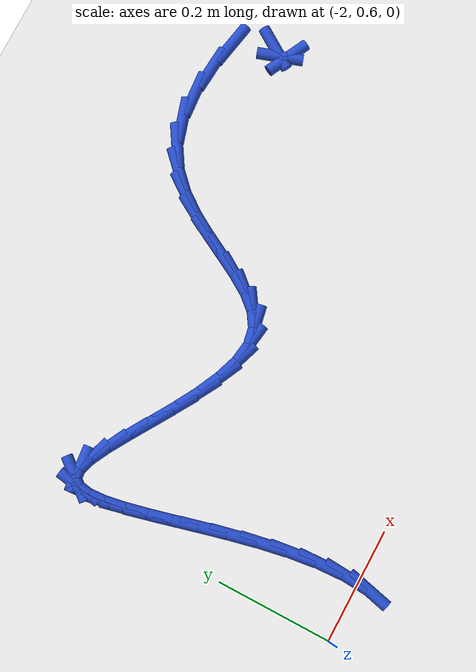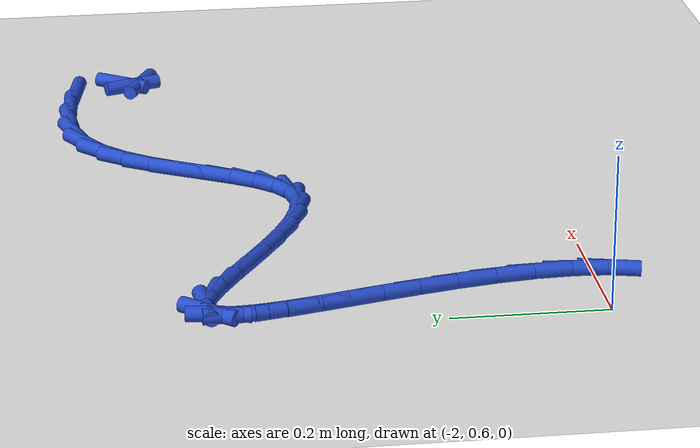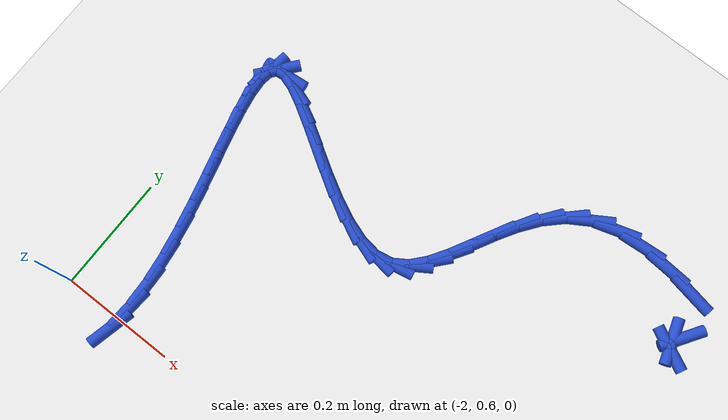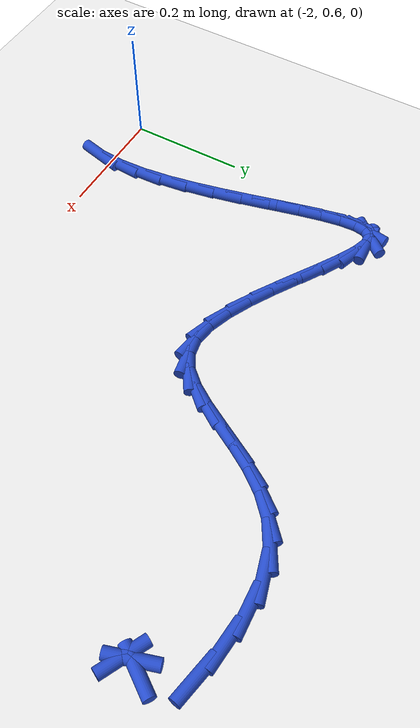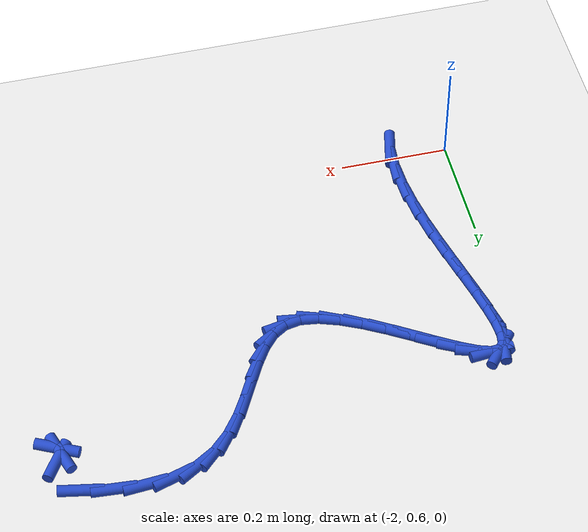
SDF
<sdf version="1.6">
 <world name="default">
  <model name="ground_plane">
   <static>1</static>
   <link name="link">
    <collision name="collision">
     <geometry><plane><normal>0 0 1</normal><size>100 100</size></plane></geometry>
     <surface><friction><ode><mu>100</mu><mu2>50</mu2></ode></friction></surface>
    </collision>
    <visual name="visual">
     <cast_shadows>0</cast_shadows>
     <geometry><plane><normal>0 0 1</normal><size>100 100</size></plane></geometry>
     <material>
      <script><uri>file://media/materials/scripts/gazebo.material</uri><name>Gazebo/WhiteGlow</name></script>
     </material>
    </visual>
   </link>
  </model>
  <model name="line">
   <link name="link_53">
    <pose>-1.161128758274284 1.1383847940797436 0.01 0 1.57 0.9865940551335252</pose>
    <collision name="collision">
     <geometry><cylinder><radius>0.01</radius><length>0.08</length></cylinder></geometry>
    </collision>
    <visual name="visual">
     <material>
      <script><name>Gazebo/Blue</name><uri>file://media/materials/scripts/gazebo.material</uri></script>
     </material>
     <geometry><cylinder><radius>0.01</radius><length>0.08</length></cylinder></geometry>
    </visual>
   </link>
   <link name="link_54">
    <pose>-1.1703131453018165 1.1244941255444962 0.01 0 1.57 -1.253305451888202</pose>
    <collision name="collision">
     <geometry><cylinder><radius>0.01</radius><length>0.08</length></cylinder></geometry>
    </collision>
    <visual name="visual">
     <material>
      <script><name>Gazebo/Blue</name><uri>file://media/materials/scripts/gazebo.material</uri></script>
     </material>
     <geometry><cylinder><radius>0.01</radius><length>0.08</length></cylinder></geometry>
    </visual>
   </link>
   <link name="link_55">
    <pose>-1.166426840530037 1.1126675231958216 0.01 0 1.57 -0.4606597184284638</pose>
    <collision name="collision">
     <geometry><cylinder><radius>0.01</radius><length>0.08</length></cylinder></geometry>
    </collision>
    <visual name="visual">
     <material>
      <script><name>Gazebo/Blue</name><uri>file://media/materials/scripts/gazebo.material</uri></script>
     </material>
     <geometry><cylinder><radius>0.01</radius><length>0.08</length></cylinder></geometry>
    </visual>
   </link>
   <link name="link_66">
    <pose>-1.1899140064845848 1.2073687295600792 0.01 0 1.57 -0.18602394724387952</pose>
    <collision name="collision">
     <geometry><cylinder><radius>0.01</radius><length>0.08</length></cylinder></geometry>
    </collision>
    <visual name="visual">
     <material>
      <script><name>Gazebo/Blue</name><uri>file://media/materials/scripts/gazebo.material</uri></script>
     </material>
     <geometry><cylinder><radius>0.01</radius><length>0.08</length></cylinder></geometry>
    </visual>
   </link>
   <link name="link_67">
    <pose>-1.244482178751375 1.2176384514821652 0.01 0 1.57 -0.07548754934938565</pose>
    <collision name="collision">
     <geometry><cylinder><radius>0.01</radius><length>0.08</length></cylinder></geometry>
    </collision>
    <visual name="visual">
     <material>
      <script><name>Gazebo/Blue</name><uri>file://media/materials/scripts/gazebo.material</uri></script>
     </material>
     <geometry><cylinder><radius>0.01</radius><length>0.08</length></cylinder></geometry>
    </visual>
   </link>
   <link name="link_68">
    <pose>-1.2981199509796055 1.221695143900685 0.01 0 1.57 0.07601645962911668</pose>
    <collision name="collision">
     <geometry><cylinder><radius>0.01</radius><length>0.08</length></cylinder></geometry>
    </collision>
    <visual name="visual">
     <material>
      <script><name>Gazebo/Blue</name><uri>file://media/materials/scripts/gazebo.material</uri></script>
     </material>
     <geometry><cylinder><radius>0.01</radius><length>0.08</length></cylinder></geometry>
    </visual>
   </link>
   <link name="link_69">
    <pose>-1.347815637745258 1.217910160412104 0.01 0 1.57 0.29694587534450034</pose>
    <collision name="collision">
     <geometry><cylinder><radius>0.01</radius><length>0.08</length></cylinder></geometry>
    </collision>
    <visual name="visual">
     <material>
      <script><name>Gazebo/Blue</name><uri>file://media/materials/scripts/gazebo.material</uri></script>
     </material>
     <geometry><cylinder><radius>0.01</radius><length>0.08</length></cylinder></geometry>
    </visual>
   </link>
   <link name="link_70">
    <pose>-1.3907080932190066 1.2047853681177356 0.01 0 1.57 0.5531061286805906</pose>
    <collision name="collision">
     <geometry><cylinder><radius>0.01</radius><length>0.08</length></cylinder></geometry>
    </collision>
    <visual name="visual">
     <material>
      <script><name>Gazebo/Blue</name><uri>file://media/materials/scripts/gazebo.material</uri></script>
     </material>
     <geometry><cylinder><radius>0.01</radius><length>0.08</length></cylinder></geometry>
    </visual>
   </link>
   <link name="link_71">
    <pose>-1.4262591598740235 1.1828365982569913 0.01 0 1.57 0.771271952233313</pose>
    <collision name="collision">
     <geometry><cylinder><radius>0.01</radius><length>0.08</length></cylinder></geometry>
    </collision>
    <visual name="visual">
     <material>
      <script><name>Gazebo/Blue</name><uri>file://media/materials/scripts/gazebo.material</uri></script>
     </material>
     <geometry><cylinder><radius>0.01</radius><length>0.08</length></cylinder></geometry>
    </visual>
   </link>
   <link name="link_72">
    <pose>-1.4557556623883396 1.1541618892243086 0.01 0 1.57 0.9305191412809647</pose>
    <collision name="collision">
     <geometry><cylinder><radius>0.01</radius><length>0.08</length></cylinder></geometry>
    </collision>
    <visual name="visual">
     <material>
      <script><name>Gazebo/Blue</name><uri>file://media/materials/scripts/gazebo.material</uri></script>
     </material>
     <geometry><cylinder><radius>0.01</radius><length>0.08</length></cylinder></geometry>
    </visual>
   </link>
   <link name="link_73">
    <pose>-1.4805335425568877 1.120901862543751 0.01 0 1.57 1.030946109857092</pose>
    <collision name="collision">
     <geometry><cylinder><radius>0.01</radius><length>0.08</length></cylinder></geometry>
    </collision>
    <visual name="visual">
     <material>
      <script><name>Gazebo/Blue</name><uri>file://media/materials/scripts/gazebo.material</uri></script>
     </material>
     <geometry><cylinder><radius>0.01</radius><length>0.08</length></cylinder></geometry>
    </visual>
   </link>
   <link name="link_74">
    <pose>-1.5019287421746026 1.0851971397393836 0.01 0 1.57 1.0777357255396238</pose>
    <collision name="collision">
     <geometry><cylinder><radius>0.01</radius><length>0.08</length></cylinder></geometry>
    </collision>
    <visual name="visual">
     <material>
      <script><name>Gazebo/Blue</name><uri>file://media/materials/scripts/gazebo.material</uri></script>
     </material>
     <geometry><cylinder><radius>0.01</radius><length>0.08</length></cylinder></geometry>
    </visual>
   </link>
   <link name="link_75">
    <pose>-1.5212772030364152 1.049188342335271 0.01 0 1.57 1.071488971842338</pose>
    <collision name="collision">
     <geometry><cylinder><radius>0.01</radius><length>0.08</length></cylinder></geometry>
    </collision>
    <visual name="visual">
     <material>
      <script><name>Gazebo/Blue</name><uri>file://media/materials/scripts/gazebo.material</uri></script>
     </material>
     <geometry><cylinder><radius>0.01</radius><length>0.08</length></cylinder></geometry>
    </visual>
   </link>
   <link name="link_76">
    <pose>-1.5399148669372602 1.0150160918554785 0.01 0 1.57 1.0029421887544863</pose>
    <collision name="collision">
     <geometry><cylinder><radius>0.01</radius><length>0.08</length></cylinder></geometry>
    </collision>
    <visual name="visual">
     <material>
      <script><name>Gazebo/Blue</name><uri>file://media/materials/scripts/gazebo.material</uri></script>
     </material>
     <geometry><cylinder><radius>0.01</radius><length>0.08</length></cylinder></geometry>
    </visual>
   </link>
   <link name="link_77">
    <pose>-1.5591776756720708 0.9848210098240698 0.01 0 1.57 0.8483023012357603</pose>
    <collision name="collision">
     <geometry><cylinder><radius>0.01</radius><length>0.08</length></cylinder></geometry>
    </collision>
    <visual name="visual">
     <material>
      <script><name>Gazebo/Blue</name><uri>file://media/materials/scripts/gazebo.material</uri></script>
     </material>
     <geometry><cylinder><radius>0.01</radius><length>0.08</length></cylinder></geometry>
    </visual>
   </link>
   <link name="link_78">
    <pose>-1.5804015710357797 0.9607437177651093 0.01 0 1.57 0.572935323096822</pose>
    <collision name="collision">
     <geometry><cylinder><radius>0.01</radius><length>0.08</length></cylinder></geometry>
    </collision>
    <visual name="visual">
     <material>
      <script><name>Gazebo/Blue</name><uri>file://media/materials/scripts/gazebo.material</uri></script>
     </material>
     <geometry><cylinder><radius>0.01</radius><length>0.08</length></cylinder></geometry>
    </visual>
   </link>
   <link name="link_79">
    <pose>-1.6049224948233203 0.9449248372026622 0.01 0 1.57 0.1875647733040756</pose>
    <collision name="collision">
     <geometry><cylinder><radius>0.01</radius><length>0.08</length></cylinder></geometry>
    </collision>
    <visual name="visual">
     <material>
      <script><name>Gazebo/Blue</name><uri>file://media/materials/scripts/gazebo.material</uri></script>
     </material>
     <geometry><cylinder><radius>0.01</radius><length>0.08</length></cylinder></geometry>
    </visual>
   </link>
   <link name="link_80">
    <pose>-1.63401449266159 0.9394033006288797 0.01 0 1.57 -0.13828781224541964</pose>
    <collision name="collision">
     <geometry><cylinder><radius>0.01</radius><length>0.08</length></cylinder></geometry>
    </collision>
    <visual name="visual">
     <material>
      <script><name>Gazebo/Blue</name><uri>file://media/materials/scripts/gazebo.material</uri></script>
     </material>
     <geometry><cylinder><radius>0.01</radius><length>0.08</length></cylinder></geometry>
    </visual>
   </link>
   <link name="link_81">
    <pose>-1.6676532793122019 0.9440850165865383 0.01 0 1.57 -0.3328378080375104</pose>
    <collision name="collision">
     <geometry><cylinder><radius>0.01</radius><length>0.08</length></cylinder></geometry>
    </collision>
    <visual name="visual">
     <material>
      <script><name>Gazebo/Blue</name><uri>file://media/materials/scripts/gazebo.material</uri></script>
     </material>
     <geometry><cylinder><radius>0.01</radius><length>0.08</length></cylinder></geometry>
    </visual>
   </link>
   <link name="link_82">
    <pose>-1.7045822458619588 0.9568513126876004 0.01 0 1.57 -0.4469678608361376</pose>
    <collision name="collision">
     <geometry><cylinder><radius>0.01</radius><length>0.08</length></cylinder></geometry>
    </collision>
    <visual name="visual">
     <material>
      <script><name>Gazebo/Blue</name><uri>file://media/materials/scripts/gazebo.material</uri></script>
     </material>
     <geometry><cylinder><radius>0.01</radius><length>0.08</length></cylinder></geometry>
    </visual>
   </link>
   <link name="link_83">
    <pose>-1.7434960999356945 0.9755035346279384 0.01 0 1.57 -0.513696573319698</pose>
    <collision name="collision">
     <geometry><cylinder><radius>0.01</radius><length>0.08</length></cylinder></geometry>
    </collision>
    <visual name="visual">
     <material>
      <script><name>Gazebo/Blue</name><uri>file://media/materials/scripts/gazebo.material</uri></script>
     </material>
     <geometry><cylinder><radius>0.01</radius><length>0.08</length></cylinder></geometry>
    </visual>
   </link>
   <link name="link_84">
    <pose>-1.7830895491582406 0.9978430281034236 0.01 0 1.57 -0.5488199919390537</pose>
    <collision name="collision">
     <geometry><cylinder><radius>0.01</radius><length>0.08</length></cylinder></geometry>
    </collision>
    <visual name="visual">
     <material>
      <script><name>Gazebo/Blue</name><uri>file://media/materials/scripts/gazebo.material</uri></script>
     </material>
     <geometry><cylinder><radius>0.01</radius><length>0.08</length></cylinder></geometry>
    </visual>
   </link>
   <link name="link_85">
    <pose>-1.8220573011544303 1.0216711388099289 0.01 0 1.57 -0.5580185144194386</pose>
    <collision name="collision">
     <geometry><cylinder><radius>0.01</radius><length>0.08</length></cylinder></geometry>
    </collision>
    <visual name="visual">
     <material>
      <script><name>Gazebo/Blue</name><uri>file://media/materials/scripts/gazebo.material</uri></script>
     </material>
     <geometry><cylinder><radius>0.01</radius><length>0.08</length></cylinder></geometry>
    </visual>
   </link>
   <link name="link_86">
    <pose>-1.859094063549096 1.0447892124433258 0.01 0 1.57 -0.5388755868270649</pose>
    <collision name="collision">
     <geometry><cylinder><radius>0.01</radius><length>0.08</length></cylinder></geometry>
    </collision>
    <visual name="visual">
     <material>
      <script><name>Gazebo/Blue</name><uri>file://media/materials/scripts/gazebo.material</uri></script>
     </material>
     <geometry><cylinder><radius>0.01</radius><length>0.08</length></cylinder></geometry>
    </visual>
   </link>
   <link name="link_87">
    <pose>-1.892894543967069 1.0649985946994858 0.01 0 1.57 -0.4764853854381218</pose>
    <collision name="collision">
     <geometry><cylinder><radius>0.01</radius><length>0.08</length></cylinder></geometry>
    </collision>
    <visual name="visual">
     <material>
      <script><name>Gazebo/Blue</name><uri>file://media/materials/scripts/gazebo.material</uri></script>
     </material>
     <geometry><cylinder><radius>0.01</radius><length>0.08</length></cylinder></geometry>
    </visual>
   </link>
   <link name="link_88">
    <pose>-1.9221534500331827 1.0801006312742816 0.01 0 1.57 -0.3214438914504846</pose>
    <collision name="collision">
     <geometry><cylinder><radius>0.01</radius><length>0.08</length></cylinder></geometry>
    </collision>
    <visual name="visual">
     <material>
      <script><name>Gazebo/Blue</name><uri>file://media/materials/scripts/gazebo.material</uri></script>
     </material>
     <geometry><cylinder><radius>0.01</radius><length>0.08</length></cylinder></geometry>
    </visual>
   </link>
   <link name="link_89">
    <pose>-1.94556548937227 1.087896667863585 0.01 0 1.57 0.09702985640388945</pose>
    <collision name="collision">
     <geometry><cylinder><radius>0.01</radius><length>0.08</length></cylinder></geometry>
    </collision>
    <visual name="visual">
     <material>
      <script><name>Gazebo/Blue</name><uri>file://media/materials/scripts/gazebo.material</uri></script>
     </material>
     <geometry><cylinder><radius>0.01</radius><length>0.08</length></cylinder></geometry>
    </visual>
   </link>
   <link name="link_90">
    <pose>-1.9619079806813127 1.0863059630904266 0.01 0 1.57 0.8818022737360411</pose>
    <collision name="collision">
     <geometry><cylinder><radius>0.01</radius><length>0.08</length></cylinder></geometry>
    </collision>
    <visual name="visual">
     <material>
      <script><name>Gazebo/Blue</name><uri>file://media/materials/scripts/gazebo.material</uri></script>
     </material>
     <geometry><cylinder><radius>0.01</radius><length>0.08</length></cylinder></geometry>
    </visual>
   </link>
   <link name="link_91">
    <pose>-1.9712016015454716 1.075022453985907 0.01 0 1.57 1.410156198600101</pose>
    <collision name="collision">
     <geometry><cylinder><radius>0.01</radius><length>0.08</length></cylinder></geometry>
    </collision>
    <visual name="visual">
     <material>
      <script><name>Gazebo/Blue</name><uri>file://media/materials/scripts/gazebo.material</uri></script>
     </material>
     <geometry><cylinder><radius>0.01</radius><length>0.08</length></cylinder></geometry>
    </visual>
   </link>
   <link name="link_92">
    <pose>-1.9744278925620655 1.055111542294181 0.01 0 1.57 -1.5040318441585454</pose>
    <collision name="collision">
     <geometry><cylinder><radius>0.01</radius><length>0.08</length></cylinder></geometry>
    </collision>
    <visual name="visual">
     <material>
      <script><name>Gazebo/Blue</name><uri>file://media/materials/scripts/gazebo.material</uri></script>
     </material>
     <geometry><cylinder><radius>0.01</radius><length>0.08</length></cylinder></geometry>
    </visual>
   </link>
   <link name="link_93">
    <pose>-1.9725933270602438 1.0276742168945825 0.01 0 1.57 -1.3986119691807803</pose>
    <collision name="collision">
     <geometry><cylinder><radius>0.01</radius><length>0.08</length></cylinder></geometry>
    </collision>
    <visual name="visual">
     <material>
      <script><name>Gazebo/Blue</name><uri>file://media/materials/scripts/gazebo.material</uri></script>
     </material>
     <geometry><cylinder><radius>0.01</radius><length>0.08</length></cylinder></geometry>
    </visual>
   </link>
   <link name="link_94">
    <pose>-1.9667043783691551 0.9938114666664462 0.01 0 1.57 -1.346575399080289</pose>
    <collision name="collision">
     <geometry><cylinder><radius>0.01</radius><length>0.08</length></cylinder></geometry>
    </collision>
    <visual name="visual">
     <material>
      <script><name>Gazebo/Blue</name><uri>file://media/materials/scripts/gazebo.material</uri></script>
     </material>
     <geometry><cylinder><radius>0.01</radius><length>0.08</length></cylinder></geometry>
    </visual>
   </link>
   <link name="link_95">
    <pose>-1.9577675198179472 0.9546242804891049 0.01 0 1.57 -1.3230956206269366</pose>
    <collision name="collision">
     <geometry><cylinder><radius>0.01</radius><length>0.08</length></cylinder></geometry>
    </collision>
    <visual name="visual">
     <material>
      <script><name>Gazebo/Blue</name><uri>file://media/materials/scripts/gazebo.material</uri></script>
     </material>
     <geometry><cylinder><radius>0.01</radius><length>0.08</length></cylinder></geometry>
    </visual>
   </link>
   <link name="link_96">
    <pose>-1.946789224735768 0.9112136472418919 0.01 0 1.57 -1.3181469825982528</pose>
    <collision name="collision">
     <geometry><cylinder><radius>0.01</radius><length>0.08</length></cylinder></geometry>
    </collision>
    <visual name="visual">
     <material>
      <script><name>Gazebo/Blue</name><uri>file://media/materials/scripts/gazebo.material</uri></script>
     </material>
     <geometry><cylinder><radius>0.01</radius><length>0.08</length></cylinder></geometry>
    </visual>
   </link>
   <link name="link_97">
    <pose>-1.934775966451767 0.8646805558041422 0.01 0 1.57 -1.327696688601335</pose>
    <collision name="collision">
     <geometry><cylinder><radius>0.01</radius><length>0.08</length></cylinder></geometry>
    </collision>
    <visual name="visual">
     <material>
      <script><name>Gazebo/Blue</name><uri>file://media/materials/scripts/gazebo.material</uri></script>
     </material>
     <geometry><cylinder><radius>0.01</radius><length>0.08</length></cylinder></geometry>
    </visual>
   </link>
   <link name="link_98">
    <pose>-1.9227342182950915 0.8161259950551885 0.01 0 1.57 -1.350792773091679</pose>
    <collision name="collision">
     <geometry><cylinder><radius>0.01</radius><length>0.08</length></cylinder></geometry>
    </collision>
    <visual name="visual">
     <material>
      <script><name>Gazebo/Blue</name><uri>file://media/materials/scripts/gazebo.material</uri></script>
     </material>
     <geometry><cylinder><radius>0.01</radius><length>0.08</length></cylinder></geometry>
    </visual>
   </link>
   <link name="link_99">
    <pose>-1.9116704535948896 0.7666509538743648 0.01 0 1.57 -1.3886528147958639</pose>
    <collision name="collision">
     <geometry><cylinder><radius>0.01</radius><length>0.08</length></cylinder></geometry>
    </collision>
    <visual name="visual">
     <material>
      <script><name>Gazebo/Blue</name><uri>file://media/materials/scripts/gazebo.material</uri></script>
     </material>
     <geometry><cylinder><radius>0.01</radius><length>0.08</length></cylinder></geometry>
    </visual>
   </link>
   <link name="link_100">
    <pose>-1.9025911456803104 0.7173564211410042 0.01 0 1.57 -1.4446627589190921</pose>
    <collision name="collision">
     <geometry><cylinder><radius>0.01</radius><length>0.08</length></cylinder></geometry>
    </collision>
    <visual name="visual">
     <material>
      <script><name>Gazebo/Blue</name><uri>file://media/materials/scripts/gazebo.material</uri></script>
     </material>
     <geometry><cylinder><radius>0.01</radius><length>0.08</length></cylinder></geometry>
    </visual>
   </link>
   <link name="link_101">
    <pose>-1.896502767880502 0.6693433857344413 0.01 0 1.57 -1.5250043592690776</pose>
    <collision name="collision">
     <geometry><cylinder><radius>0.01</radius><length>0.08</length></cylinder></geometry>
    </collision>
    <visual name="visual">
     <material>
      <script><name>Gazebo/Blue</name><uri>file://media/materials/scripts/gazebo.material</uri></script>
     </material>
     <geometry><cylinder><radius>0.01</radius><length>0.08</length></cylinder></geometry>
    </visual>
   </link>
   <link name="link_102">
    <pose>-1.8944117935246123 0.6237128365340098 0.01 0 1.57 1.5017932507395853</pose>
    <collision name="collision">
     <geometry><cylinder><radius>0.01</radius><length>0.08</length></cylinder></geometry>
    </collision>
    <visual name="visual">
     <material>
      <script><name>Gazebo/Blue</name><uri>file://media/materials/scripts/gazebo.material</uri></script>
     </material>
     <geometry><cylinder><radius>0.01</radius><length>0.08</length></cylinder></geometry>
    </visual>
   </link>
   <link name="link_103">
    <pose>-1.8973246959417895 0.5815657624190426 0.01 0 1.57 1.337562783518316</pose>
    <collision name="collision">
     <geometry><cylinder><radius>0.01</radius><length>0.08</length></cylinder></geometry>
    </collision>
    <visual name="visual">
     <material>
      <script><name>Gazebo/Blue</name><uri>file://media/materials/scripts/gazebo.material</uri></script>
     </material>
     <geometry><cylinder><radius>0.01</radius><length>0.08</length></cylinder></geometry>
    </visual>
   </link>
  </model>
 </world>
</sdf>
